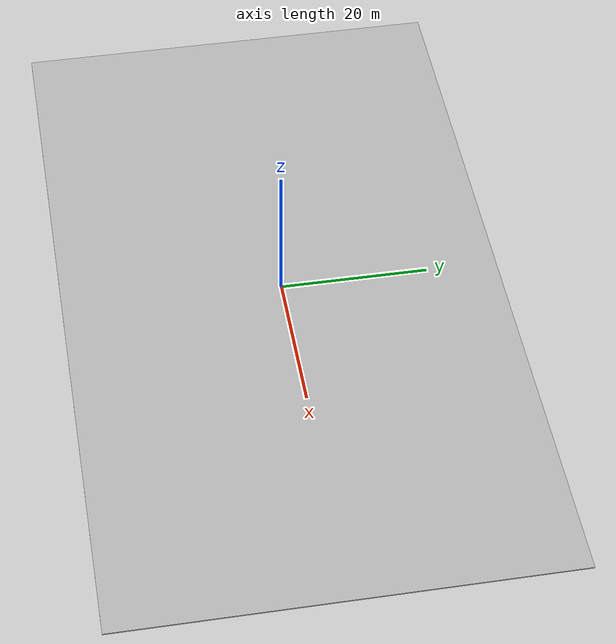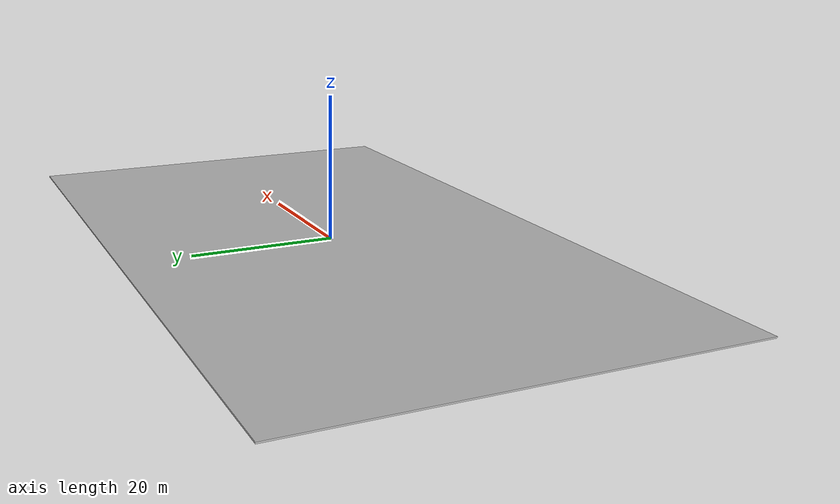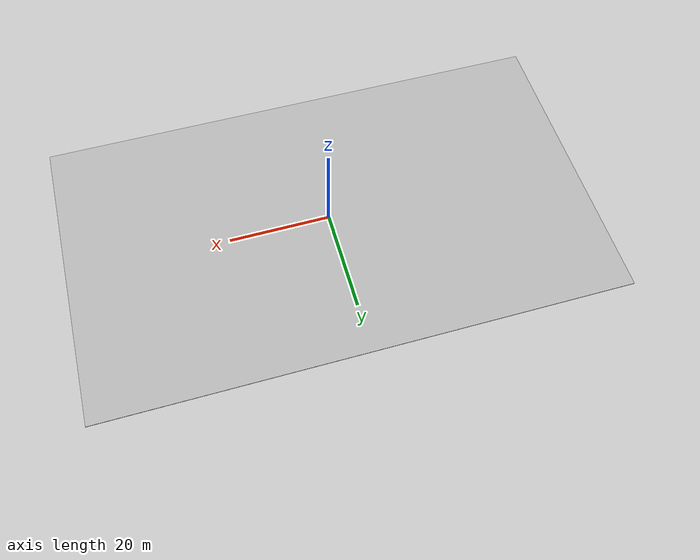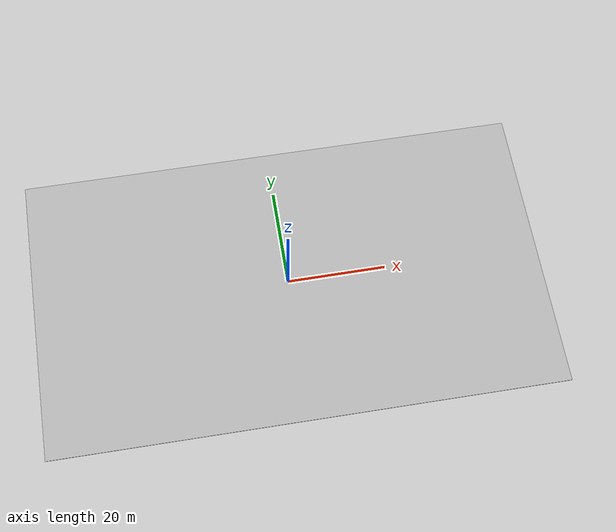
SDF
<?xml version="1.0"?>
<sdf version="1.4">
  <model name="race_track">
    <static>true</static>
    <link name="link">

      <collision name="collision">
        <geometry>
          <box>
            <size>103.65 59.39 0.2</size>
          </box>
        </geometry>
      </collision>

      <visual name="visual">
        <pose>0 0 0 0 0 0</pose>
        <cast_shadows>false</cast_shadows>
        <geometry>
          <box>
            <size>103.65 59.39 0.2</size>
          </box>
        </geometry>
        <material>
          <script>
            <uri>model://race_track/materials/scripts</uri>
            <uri>model://race_track/materials/textures</uri>
            <name>vrc/race_track</name>
          </script>
        </material>
      </visual>

    </link>
  </model>
</sdf>
